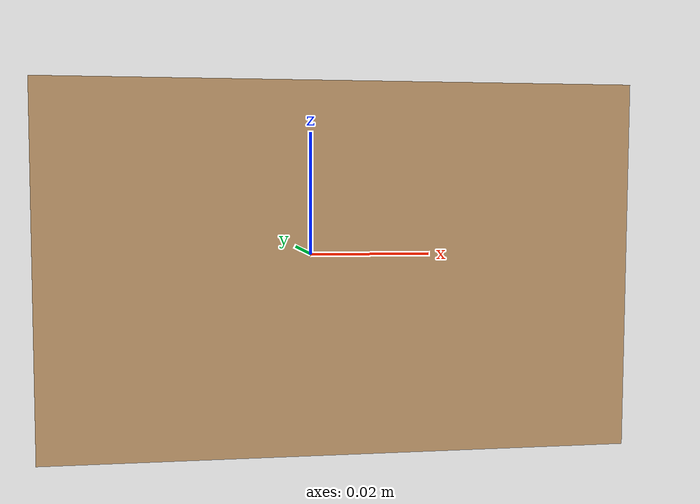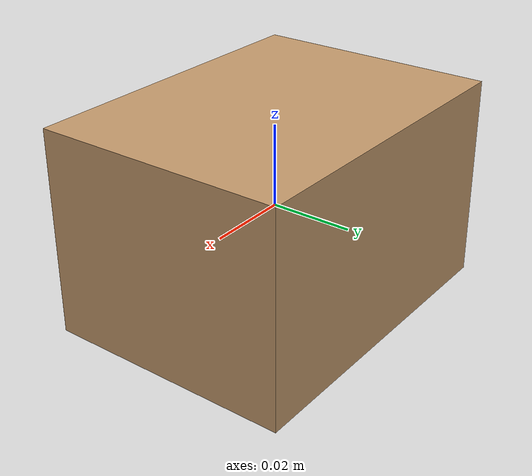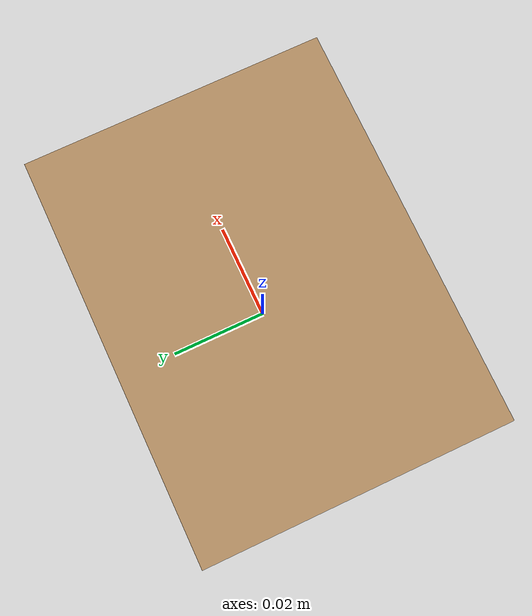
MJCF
<mujoco model="graspable_box">
  <default>
    <geom condim="4" friction="1.2 0.005 0.0001" solimp="0.9 0.95 0.001" solref="0.005 1"/>
  </default>

  <asset>
    <material name="graspable_box" rgba="0.76 0.60 0.42 1"/>
  </asset>

  <worldbody>
    <body name="graspable_box">
      <geom name="graspable_box" type="box" size="0.04 0.03 0.025" mass="0.5"
            material="graspable_box"/>
    </body>
  </worldbody>
</mujoco>
